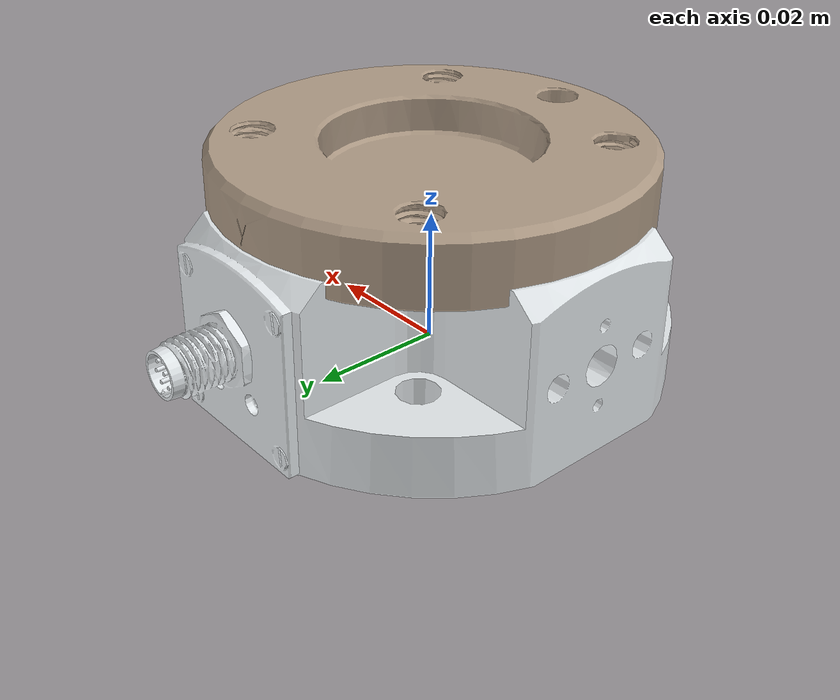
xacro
<?xml version="1.0"?>
<robot xmlns:xacro="http://wiki.ros.org/xacro"
       name="sensor" >

  <xacro:arg name="prefix" default="ft_sensor0"/>

  <xacro:include filename="$(find rokubimini_description)/urdf/BFT_ROKS_ECAT_M8.urdf.xacro" />

  <xacro:BFT_ROKS_ECAT_M8 prefix="$(arg prefix)" />

  <link name="world" />

  <joint name="world_joint" type="fixed">
    <parent link="world" />
    <child link = "ft_sensor0_mounting" />
    <origin xyz="0.0 0.0 0.0" rpy="0.0 0.0 0.0" />
  </joint>

</robot>

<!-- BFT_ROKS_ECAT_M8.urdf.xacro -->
<robot xmlns:xacro="http://wiki.ros.org/xacro">
  <xacro:macro name="BFT_ROKS_ECAT_M8" params="prefix">
    <link
      name="${prefix}_mounting">
      <inertial>
        <origin
          xyz="-1.5183E-05 0.0013673 0.01481"
          rpy="0 0 0" />
        <mass
          value="0.065824" />
        <inertia
          ixx="1.7809E-05"
          ixy="-2.0363E-08"
          ixz="7.7513E-09"
          iyy="1.7585E-05"
          iyz="-1.1867E-08"
          izz="2.738E-05" />
      </inertial>
      <visual>
        <origin
          xyz="0 0 0"
          rpy="0 0 0" />
        <geometry>
          <mesh
            filename="package://rokubimini_description/meshes/BFT_ROKS_ECAT_M8/mounting.STL" />
        </geometry>
        <material
          name="Bota_material">
          <color
            rgba="0.89804 0.91765 0.92941 1" />
        </material>
      </visual>
      <collision>
        <origin
          xyz="0 0 0.0155"
          rpy="0 0 0" />
        <geometry>
          <cylinder radius="0.024" length="0.031"/>
        </geometry>
      </collision>
      <collision>
        <origin
          xyz="0 0.028 0.0135"
          rpy="0 0 0" />
        <geometry>
          <box size="0.018 0.015 0.027" />
        </geometry>
      </collision>
      <collision>
        <origin
          xyz="0 0.0515 0.0135"
          rpy="1.57 0 0" />
        <geometry>
          <cylinder radius="0.0065" length="0.032"/>
        </geometry>
      </collision>
    </link>
    <link
      name="${prefix}_imu">
      <inertial>
        <origin
          xyz="-0.00017427 -0.00075655 -0.0031216"
          rpy="0 0 0" />
        <mass
          value="0.0031626" />
        <inertia
          ixx="1.5773E-07"
          ixy="-2.29E-11"
          ixz="-4.5155E-13"
          iyy="1.5929E-07"
          iyz="3.4636E-12"
          izz="3.1594E-07" />
      </inertial>
      <visual>
        <origin
          xyz="0 0 -0.0035"
          rpy="0 0 0" />
        <geometry>
          <cylinder radius="0.019" length="0.0075"/>
        </geometry>
        <material
          name="Bota_material">
          <color
            rgba="0.79216 0.81961 0.93333 1" />
        </material>
      </visual>
    </link>
    <joint
      name="mounting_to_imu"
      type="fixed">
      <origin
        xyz="0 0 0.0098"
        rpy="0 0 0" />
      <parent
        link="${prefix}_mounting" />
      <child
        link="${prefix}_imu" />
      <axis
        xyz="0 0 0" />
    </joint>
    <link
      name="${prefix}_wrench">
      <inertial>
        <origin
          xyz="-1.6253E-08 6.5136E-06 -0.0075009"
          rpy="0 0 0" />
        <mass
          value="0.028727" />
        <inertia
          ixx="3.2695E-06"
          ixy="9.1326E-13"
          ixz="-1.2355E-12"
          iyy="3.2665E-06"
          iyz="-3.9713E-10"
          izz="5.081E-06" />
      </inertial>
      <visual>
        <origin
          xyz="0 0 0"
          rpy="0 0 0" />
        <geometry>
          <mesh
            filename="package://rokubimini_description/meshes/BFT_ROKS_ECAT_M8/wrench.STL" />
        </geometry>
        <material
          name="Bota_material">
          <color
            rgba="0.6902 0.61176 0.52941 1" />
        </material>
      </visual>
      <collision>
        <origin
          xyz="0 0 -0.009"
          rpy="0 0 0" />
        <geometry>
          <cylinder radius="0.019" length="0.018"/>
        </geometry>
      </collision>
    </link>
    <joint
      name="mounting_to_wrench"
      type="fixed">
      <origin
        xyz="0 0 0.032"
        rpy="0 0 0" />
      <parent
        link="${prefix}_mounting" />
      <child
        link="${prefix}_wrench" />
      <axis
        xyz="0 0 0" />
    </joint>
  </xacro:macro>
</robot>
